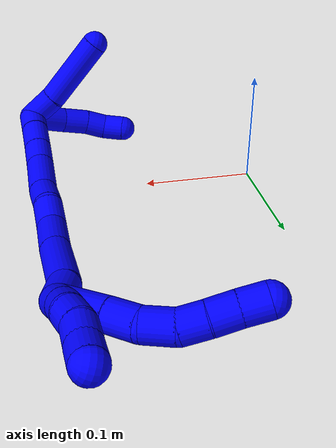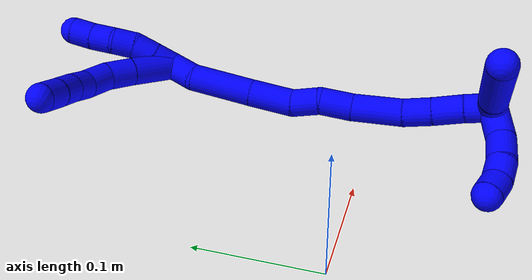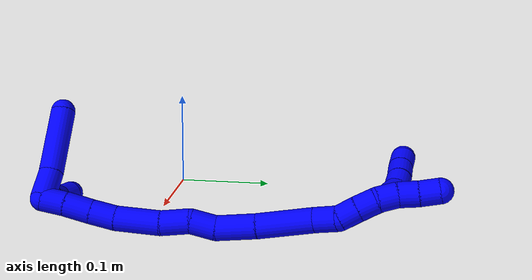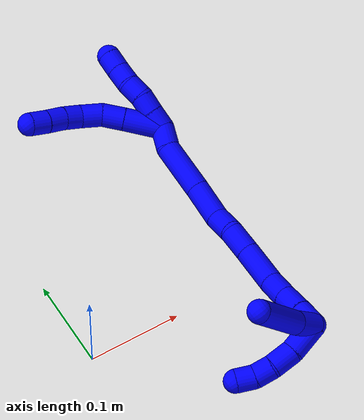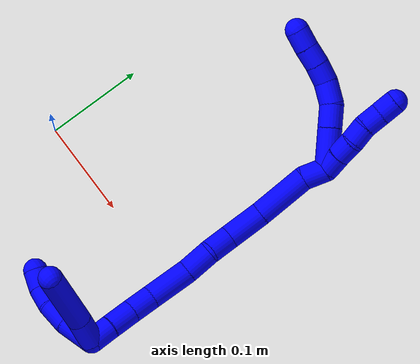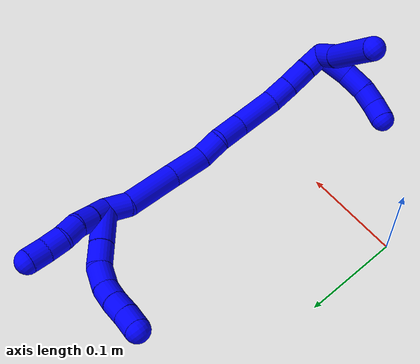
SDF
<sdf version="1.7">
 <world name="default">
  <model name="1">
   <static>0</static>
   <link name="1">
    <collision name="collision-cylinder-e_1_2_8">
     <pose>0.008813 0.013366 0.013332 -0.786685 0.436766 -0.183663</pose>
     <geometry><cylinder><radius>0.0125</radius><length>0.041668</length></cylinder></geometry>
     <surface>
      <friction><ode><mu>1.16</mu><mu2>1.16</mu2><slip1>0</slip1><slip2>0</slip2></ode></friction>
      <contact><ode><kp>1e+06</kp><kd>1</kd><max_vel>0</max_vel><min_depth>0.001</min_depth></ode></contact>
     </surface>
    </collision>
    <visual name="visual-cylinder-e_1_2_8">
     <pose>0.008813 0.013366 0.013332 -0.786685 0.436766 -0.183663</pose>
     <geometry><cylinder><radius>0.0125</radius><length>0.041668</length></cylinder></geometry>
     <material><ambient>0 0 1 1</ambient></material>
    </visual>
    <collision name="collision-cylinder-e_2_8_9">
     <pose>0.022307 0.034572 0.034587 -0.780093 0.39757 -0.165255</pose>
     <geometry><cylinder><radius>0.0125</radius><length>0.024177</length></cylinder></geometry>
     <surface>
      <friction><ode><mu>1.16</mu><mu2>1.16</mu2><slip1>0</slip1><slip2>0</slip2></ode></friction>
      <contact><ode><kp>1e+06</kp><kd>1</kd><max_vel>0</max_vel><min_depth>0.001</min_depth></ode></contact>
     </surface>
    </collision>
    <visual name="visual-cylinder-e_2_8_9">
     <pose>0.022307 0.034572 0.034587 -0.780093 0.39757 -0.165255</pose>
     <geometry><cylinder><radius>0.0125</radius><length>0.024177</length></cylinder></geometry>
     <material><ambient>0 0 1 1</ambient></material>
    </visual>
    <collision name="collision-cylinder-e_3_9_10">
     <pose>0.032173 0.046752 0.052379 -0.414389 0.448274 -0.095769</pose>
     <geometry><cylinder><radius>0.0125</radius><length>0.023929</length></cylinder></geometry>
     <surface>
      <friction><ode><mu>1.16</mu><mu2>1.16</mu2><slip1>0</slip1><slip2>0</slip2></ode></friction>
      <contact><ode><kp>1e+06</kp><kd>1</kd><max_vel>0</max_vel><min_depth>0.001</min_depth></ode></contact>
     </surface>
    </collision>
    <visual name="visual-cylinder-e_3_9_10">
     <pose>0.032173 0.046752 0.052379 -0.414389 0.448274 -0.095769</pose>
     <geometry><cylinder><radius>0.0125</radius><length>0.023929</length></cylinder></geometry>
     <material><ambient>0 0 1 1</ambient></material>
    </visual>
    <collision name="collision-cylinder-e_4_10_11">
     <pose>0.043878 0.052386 0.069803 -0.169391 0.704967 -0.062439</pose>
     <geometry><cylinder><radius>0.0125</radius><length>0.020124</length></cylinder></geometry>
     <surface>
      <friction><ode><mu>1.16</mu><mu2>1.16</mu2><slip1>0</slip1><slip2>0</slip2></ode></friction>
      <contact><ode><kp>1e+06</kp><kd>1</kd><max_vel>0</max_vel><min_depth>0.001</min_depth></ode></contact>
     </surface>
    </collision>
    <visual name="visual-cylinder-e_4_10_11">
     <pose>0.043878 0.052386 0.069803 -0.169391 0.704967 -0.062439</pose>
     <geometry><cylinder><radius>0.0125</radius><length>0.020124</length></cylinder></geometry>
     <material><ambient>0 0 1 1</ambient></material>
    </visual>
    <collision name="collision-cylinder-e_5_11_12">
     <pose>0.056731 0.054003 0.085137 -0.041805 0.682743 -0.014855</pose>
     <geometry><cylinder><radius>0.0125</radius><length>0.020074</length></cylinder></geometry>
     <surface>
      <friction><ode><mu>1.16</mu><mu2>1.16</mu2><slip1>0</slip1><slip2>0</slip2></ode></friction>
      <contact><ode><kp>1e+06</kp><kd>1</kd><max_vel>0</max_vel><min_depth>0.001</min_depth></ode></contact>
     </surface>
    </collision>
    <visual name="visual-cylinder-e_5_11_12">
     <pose>0.056731 0.054003 0.085137 -0.041805 0.682743 -0.014855</pose>
     <geometry><cylinder><radius>0.0125</radius><length>0.020074</length></cylinder></geometry>
     <material><ambient>0 0 1 1</ambient></material>
    </visual>
    <collision name="collision-cylinder-e_6_12_6">
     <pose>0.069346 0.05532 0.100652 -0.127552 0.678124 -0.045039</pose>
     <geometry><cylinder><radius>0.0125</radius><length>0.020027</length></cylinder></geometry>
     <surface>
      <friction><ode><mu>1.16</mu><mu2>1.16</mu2><slip1>0</slip1><slip2>0</slip2></ode></friction>
      <contact><ode><kp>1e+06</kp><kd>1</kd><max_vel>0</max_vel><min_depth>0.001</min_depth></ode></contact>
     </surface>
    </collision>
    <visual name="visual-cylinder-e_6_12_6">
     <pose>0.069346 0.05532 0.100652 -0.127552 0.678124 -0.045039</pose>
     <geometry><cylinder><radius>0.0125</radius><length>0.020027</length></cylinder></geometry>
     <material><ambient>0 0 1 1</ambient></material>
    </visual>
    <collision name="collision-cylinder-e_1_2_13">
     <pose>0.005276 0.008483 -0.000459 -1.62487 0.555733 -0.584935</pose>
     <geometry><cylinder><radius>0.0125</radius><length>0.02</length></cylinder></geometry>
     <surface>
      <friction><ode><mu>1.16</mu><mu2>1.16</mu2><slip1>0</slip1><slip2>0</slip2></ode></friction>
      <contact><ode><kp>1e+06</kp><kd>1</kd><max_vel>0</max_vel><min_depth>0.001</min_depth></ode></contact>
     </surface>
    </collision>
    <visual name="visual-cylinder-e_1_2_13">
     <pose>0.005276 0.008483 -0.000459 -1.62487 0.555733 -0.584935</pose>
     <geometry><cylinder><radius>0.0125</radius><length>0.02</length></cylinder></geometry>
     <material><ambient>0 0 1 1</ambient></material>
    </visual>
    <collision name="collision-cylinder-e_2_13_14">
     <pose>0.015286 0.025736 -0.001738 -1.664 0.493184 -0.539226</pose>
     <geometry><cylinder><radius>0.0125</radius><length>0.02</length></cylinder></geometry>
     <surface>
      <friction><ode><mu>1.16</mu><mu2>1.16</mu2><slip1>0</slip1><slip2>0</slip2></ode></friction>
      <contact><ode><kp>1e+06</kp><kd>1</kd><max_vel>0</max_vel><min_depth>0.001</min_depth></ode></contact>
     </surface>
    </collision>
    <visual name="visual-cylinder-e_2_13_14">
     <pose>0.015286 0.025736 -0.001738 -1.664 0.493184 -0.539226</pose>
     <geometry><cylinder><radius>0.0125</radius><length>0.02</length></cylinder></geometry>
     <material><ambient>0 0 1 1</ambient></material>
    </visual>
    <collision name="collision-cylinder-e_3_14_15">
     <pose>0.023236 0.043886 -0.001265 -1.43383 0.327444 -0.286019</pose>
     <geometry><cylinder><radius>0.0125</radius><length>0.02</length></cylinder></geometry>
     <surface>
      <friction><ode><mu>1.16</mu><mu2>1.16</mu2><slip1>0</slip1><slip2>0</slip2></ode></friction>
      <contact><ode><kp>1e+06</kp><kd>1</kd><max_vel>0</max_vel><min_depth>0.001</min_depth></ode></contact>
     </surface>
    </collision>
    <visual name="visual-cylinder-e_3_14_15">
     <pose>0.023236 0.043886 -0.001265 -1.43383 0.327444 -0.286019</pose>
     <geometry><cylinder><radius>0.0125</radius><length>0.02</length></cylinder></geometry>
     <material><ambient>0 0 1 1</ambient></material>
    </visual>
    <collision name="collision-cylinder-e_4_15_16">
     <pose>0.027626 0.063196 -3.5e-05 -1.57717 0.117575 -0.118326</pose>
     <geometry><cylinder><radius>0.0125</radius><length>0.02</length></cylinder></geometry>
     <surface>
      <friction><ode><mu>1.16</mu><mu2>1.16</mu2><slip1>0</slip1><slip2>0</slip2></ode></friction>
      <contact><ode><kp>1e+06</kp><kd>1</kd><max_vel>0</max_vel><min_depth>0.001</min_depth></ode></contact>
     </surface>
    </collision>
    <visual name="visual-cylinder-e_4_15_16">
     <pose>0.027626 0.063196 -3.5e-05 -1.57717 0.117575 -0.118326</pose>
     <geometry><cylinder><radius>0.0125</radius><length>0.02</length></cylinder></geometry>
     <material><ambient>0 0 1 1</ambient></material>
    </visual>
    <collision name="collision-cylinder-e_5_16_5">
     <pose>0.030844 0.082906 -0.000533 -1.61518 0.206019 -0.215302</pose>
     <geometry><cylinder><radius>0.0125</radius><length>0.02</length></cylinder></geometry>
     <surface>
      <friction><ode><mu>1.16</mu><mu2>1.16</mu2><slip1>0</slip1><slip2>0</slip2></ode></friction>
      <contact><ode><kp>1e+06</kp><kd>1</kd><max_vel>0</max_vel><min_depth>0.001</min_depth></ode></contact>
     </surface>
    </collision>
    <visual name="visual-cylinder-e_5_16_5">
     <pose>0.030844 0.082906 -0.000533 -1.61518 0.206019 -0.215302</pose>
     <geometry><cylinder><radius>0.0125</radius><length>0.02</length></cylinder></geometry>
     <material><ambient>0 0 1 1</ambient></material>
    </visual>
    <collision name="collision-cylinder-e_1_2_17">
     <pose>-0.001307 -0.011698 0.004243 1.22283 -0.104684 -0.073421</pose>
     <geometry><cylinder><radius>0.0125</radius><length>0.025025</length></cylinder></geometry>
     <surface>
      <friction><ode><mu>1.16</mu><mu2>1.16</mu2><slip1>0</slip1><slip2>0</slip2></ode></friction>
      <contact><ode><kp>1e+06</kp><kd>1</kd><max_vel>0</max_vel><min_depth>0.001</min_depth></ode></contact>
     </surface>
    </collision>
    <visual name="visual-cylinder-e_1_2_17">
     <pose>-0.001307 -0.011698 0.004243 1.22283 -0.104684 -0.073421</pose>
     <geometry><cylinder><radius>0.0125</radius><length>0.025025</length></cylinder></geometry>
     <material><ambient>0 0 1 1</ambient></material>
    </visual>
    <collision name="collision-cylinder-e_2_17_18">
     <pose>-0.00768 -0.051272 0.009159 1.54667 -0.179705 -0.175442</pose>
     <geometry><cylinder><radius>0.0125</radius><length>0.05668</length></cylinder></geometry>
     <surface>
      <friction><ode><mu>1.16</mu><mu2>1.16</mu2><slip1>0</slip1><slip2>0</slip2></ode></friction>
      <contact><ode><kp>1e+06</kp><kd>1</kd><max_vel>0</max_vel><min_depth>0.001</min_depth></ode></contact>
     </surface>
    </collision>
    <visual name="visual-cylinder-e_2_17_18">
     <pose>-0.00768 -0.051272 0.009159 1.54667 -0.179705 -0.175442</pose>
     <geometry><cylinder><radius>0.0125</radius><length>0.05668</length></cylinder></geometry>
     <material><ambient>0 0 1 1</ambient></material>
    </visual>
    <collision name="collision-cylinder-e_3_18_19">
     <pose>-0.015184 -0.099089 0.010736 1.52549 -0.121535 -0.116162</pose>
     <geometry><cylinder><radius>0.0125</radius><length>0.040221</length></cylinder></geometry>
     <surface>
      <friction><ode><mu>1.16</mu><mu2>1.16</mu2><slip1>0</slip1><slip2>0</slip2></ode></friction>
      <contact><ode><kp>1e+06</kp><kd>1</kd><max_vel>0</max_vel><min_depth>0.001</min_depth></ode></contact>
     </surface>
    </collision>
    <visual name="visual-cylinder-e_3_18_19">
     <pose>-0.015184 -0.099089 0.010736 1.52549 -0.121535 -0.116162</pose>
     <geometry><cylinder><radius>0.0125</radius><length>0.040221</length></cylinder></geometry>
     <material><ambient>0 0 1 1</ambient></material>
    </visual>
    <collision name="collision-cylinder-e_4_19_20">
     <pose>-0.015221 -0.131831 0.010066 1.69315 0.184038 0.207891</pose>
     <geometry><cylinder><radius>0.0125</radius><length>0.026236</length></cylinder></geometry>
     <surface>
      <friction><ode><mu>1.16</mu><mu2>1.16</mu2><slip1>0</slip1><slip2>0</slip2></ode></friction>
      <contact><ode><kp>1e+06</kp><kd>1</kd><max_vel>0</max_vel><min_depth>0.001</min_depth></ode></contact>
     </surface>
    </collision>
    <visual name="visual-cylinder-e_4_19_20">
     <pose>-0.015221 -0.131831 0.010066 1.69315 0.184038 0.207891</pose>
     <geometry><cylinder><radius>0.0125</radius><length>0.026236</length></cylinder></geometry>
     <material><ambient>0 0 1 1</ambient></material>
    </visual>
    <collision name="collision-cylinder-e_5_20_21">
     <pose>-0.014981 -0.159246 0.008151 1.59415 -0.146715 -0.150168</pose>
     <geometry><cylinder><radius>0.0125</radius><length>0.029556</length></cylinder></geometry>
     <surface>
      <friction><ode><mu>1.16</mu><mu2>1.16</mu2><slip1>0</slip1><slip2>0</slip2></ode></friction>
      <contact><ode><kp>1e+06</kp><kd>1</kd><max_vel>0</max_vel><min_depth>0.001</min_depth></ode></contact>
     </surface>
    </collision>
    <visual name="visual-cylinder-e_5_20_21">
     <pose>-0.014981 -0.159246 0.008151 1.59415 -0.146715 -0.150168</pose>
     <geometry><cylinder><radius>0.0125</radius><length>0.029556</length></cylinder></geometry>
     <material><ambient>0 0 1 1</ambient></material>
    </visual>
    <collision name="collision-cylinder-e_6_21_22">
     <pose>-0.016437 -0.196697 0.007561 1.5817 0.030838 0.031176</pose>
     <geometry><cylinder><radius>0.0125</radius><length>0.045697</length></cylinder></geometry>
     <surface>
      <friction><ode><mu>1.16</mu><mu2>1.16</mu2><slip1>0</slip1><slip2>0</slip2></ode></friction>
      <contact><ode><kp>1e+06</kp><kd>1</kd><max_vel>0</max_vel><min_depth>0.001</min_depth></ode></contact>
     </surface>
    </collision>
    <visual name="visual-cylinder-e_6_21_22">
     <pose>-0.016437 -0.196697 0.007561 1.5817 0.030838 0.031176</pose>
     <geometry><cylinder><radius>0.0125</radius><length>0.045697</length></cylinder></geometry>
     <material><ambient>0 0 1 1</ambient></material>
    </visual>
    <collision name="collision-cylinder-e_7_22_23">
     <pose>-0.013484 -0.23212 0.00614 1.66365 0.176032 0.193085</pose>
     <geometry><cylinder><radius>0.0125</radius><length>0.025679</length></cylinder></geometry>
     <surface>
      <friction><ode><mu>1.16</mu><mu2>1.16</mu2><slip1>0</slip1><slip2>0</slip2></ode></friction>
      <contact><ode><kp>1e+06</kp><kd>1</kd><max_vel>0</max_vel><min_depth>0.001</min_depth></ode></contact>
     </surface>
    </collision>
    <visual name="visual-cylinder-e_7_22_23">
     <pose>-0.013484 -0.23212 0.00614 1.66365 0.176032 0.193085</pose>
     <geometry><cylinder><radius>0.0125</radius><length>0.025679</length></cylinder></geometry>
     <material><ambient>0 0 1 1</ambient></material>
    </visual>
    <collision name="collision-cylinder-e_8_23_24">
     <pose>-0.008436 -0.257924 0.003307 1.69577 0.207111 0.234521</pose>
     <geometry><cylinder><radius>0.0125</radius><length>0.027225</length></cylinder></geometry>
     <surface>
      <friction><ode><mu>1.16</mu><mu2>1.16</mu2><slip1>0</slip1><slip2>0</slip2></ode></friction>
      <contact><ode><kp>1e+06</kp><kd>1</kd><max_vel>0</max_vel><min_depth>0.001</min_depth></ode></contact>
     </surface>
    </collision>
    <visual name="visual-cylinder-e_8_23_24">
     <pose>-0.008436 -0.257924 0.003307 1.69577 0.207111 0.234521</pose>
     <geometry><cylinder><radius>0.0125</radius><length>0.027225</length></cylinder></geometry>
     <material><ambient>0 0 1 1</ambient></material>
    </visual>
    <collision name="collision-cylinder-e_9_24_1">
     <pose>-0.004004 -0.282807 0.000433 1.67449 0.138384 0.153476</pose>
     <geometry><cylinder><radius>0.0125</radius><length>0.023682</length></cylinder></geometry>
     <surface>
      <friction><ode><mu>1.16</mu><mu2>1.16</mu2><slip1>0</slip1><slip2>0</slip2></ode></friction>
      <contact><ode><kp>1e+06</kp><kd>1</kd><max_vel>0</max_vel><min_depth>0.001</min_depth></ode></contact>
     </surface>
    </collision>
    <visual name="visual-cylinder-e_9_24_1">
     <pose>-0.004004 -0.282807 0.000433 1.67449 0.138384 0.153476</pose>
     <geometry><cylinder><radius>0.0125</radius><length>0.023682</length></cylinder></geometry>
     <material><ambient>0 0 1 1</ambient></material>
    </visual>
    <collision name="collision-cylinder-e_1_1_25">
     <pose>-0.001503 -0.299194 0.015738 0.278475 0.050427 0.007069</pose>
     <geometry><cylinder><radius>0.0125</radius><length>0.034406</length></cylinder></geometry>
     <surface>
      <friction><ode><mu>1.16</mu><mu2>1.16</mu2><slip1>0</slip1><slip2>0</slip2></ode></friction>
      <contact><ode><kp>1e+06</kp><kd>1</kd><max_vel>0</max_vel><min_depth>0.001</min_depth></ode></contact>
     </surface>
    </collision>
    <visual name="visual-cylinder-e_1_1_25">
     <pose>-0.001503 -0.299194 0.015738 0.278475 0.050427 0.007069</pose>
     <geometry><cylinder><radius>0.0125</radius><length>0.034406</length></cylinder></geometry>
     <material><ambient>0 0 1 1</ambient></material>
    </visual>
    <collision name="collision-cylinder-e_2_25_26">
     <pose>0.001529 -0.30499 0.04476 0.085606 0.170859 0.007336</pose>
     <geometry><cylinder><radius>0.0125</radius><length>0.025469</length></cylinder></geometry>
     <surface>
      <friction><ode><mu>1.16</mu><mu2>1.16</mu2><slip1>0</slip1><slip2>0</slip2></ode></friction>
      <contact><ode><kp>1e+06</kp><kd>1</kd><max_vel>0</max_vel><min_depth>0.001</min_depth></ode></contact>
     </surface>
    </collision>
    <visual name="visual-cylinder-e_2_25_26">
     <pose>0.001529 -0.30499 0.04476 0.085606 0.170859 0.007336</pose>
     <geometry><cylinder><radius>0.0125</radius><length>0.025469</length></cylinder></geometry>
     <material><ambient>0 0 1 1</ambient></material>
    </visual>
    <collision name="collision-cylinder-e_3_26_27">
     <pose>0.004559 -0.304977 0.067204 -0.108819 0.086226 -0.004699</pose>
     <geometry><cylinder><radius>0.0125</radius><length>0.020074</length></cylinder></geometry>
     <surface>
      <friction><ode><mu>1.16</mu><mu2>1.16</mu2><slip1>0</slip1><slip2>0</slip2></ode></friction>
      <contact><ode><kp>1e+06</kp><kd>1</kd><max_vel>0</max_vel><min_depth>0.001</min_depth></ode></contact>
     </surface>
    </collision>
    <visual name="visual-cylinder-e_3_26_27">
     <pose>0.004559 -0.304977 0.067204 -0.108819 0.086226 -0.004699</pose>
     <geometry><cylinder><radius>0.0125</radius><length>0.020074</length></cylinder></geometry>
     <material><ambient>0 0 1 1</ambient></material>
    </visual>
    <collision name="collision-cylinder-e_4_27_4">
     <pose>0.008656 -0.300822 0.086125 -0.329304 0.328302 -0.055031</pose>
     <geometry><cylinder><radius>0.0125</radius><length>0.020051</length></cylinder></geometry>
     <surface>
      <friction><ode><mu>1.16</mu><mu2>1.16</mu2><slip1>0</slip1><slip2>0</slip2></ode></friction>
      <contact><ode><kp>1e+06</kp><kd>1</kd><max_vel>0</max_vel><min_depth>0.001</min_depth></ode></contact>
     </surface>
    </collision>
    <visual name="visual-cylinder-e_4_27_4">
     <pose>0.008656 -0.300822 0.086125 -0.329304 0.328302 -0.055031</pose>
     <geometry><cylinder><radius>0.0125</radius><length>0.020051</length></cylinder></geometry>
     <material><ambient>0 0 1 1</ambient></material>
    </visual>
    <collision name="collision-cylinder-e_1_1_28">
     <pose>0.011331 -0.293869 0.00577 -0.09173 1.12313 -0.057734</pose>
     <geometry><cylinder><radius>0.0125</radius><length>0.030398</length></cylinder></geometry>
     <surface>
      <friction><ode><mu>1.16</mu><mu2>1.16</mu2><slip1>0</slip1><slip2>0</slip2></ode></friction>
      <contact><ode><kp>1e+06</kp><kd>1</kd><max_vel>0</max_vel><min_depth>0.001</min_depth></ode></contact>
     </surface>
    </collision>
    <visual name="visual-cylinder-e_1_1_28">
     <pose>0.011331 -0.293869 0.00577 -0.09173 1.12313 -0.057734</pose>
     <geometry><cylinder><radius>0.0125</radius><length>0.030398</length></cylinder></geometry>
     <material><ambient>0 0 1 1</ambient></material>
    </visual>
    <collision name="collision-cylinder-e_2_28_3">
     <pose>0.058369 -0.293807 0.022294 0.054168 1.27972 0.040323</pose>
     <geometry><cylinder><radius>0.0125</radius><length>0.069602</length></cylinder></geometry>
     <surface>
      <friction><ode><mu>1.16</mu><mu2>1.16</mu2><slip1>0</slip1><slip2>0</slip2></ode></friction>
      <contact><ode><kp>1e+06</kp><kd>1</kd><max_vel>0</max_vel><min_depth>0.001</min_depth></ode></contact>
     </surface>
    </collision>
    <visual name="visual-cylinder-e_2_28_3">
     <pose>0.058369 -0.293807 0.022294 0.054168 1.27972 0.040323</pose>
     <geometry><cylinder><radius>0.0125</radius><length>0.069602</length></cylinder></geometry>
     <material><ambient>0 0 1 1</ambient></material>
    </visual>
    <collision name="collision-sphere-3">
     <pose>0.091706 -0.294347 0.032267 0 -0 0</pose>
     <geometry><sphere><radius>0.0125</radius></sphere></geometry>
     <surface>
      <friction><ode><mu>1.16</mu><mu2>1.16</mu2><slip1>0</slip1><slip2>0</slip2></ode></friction>
      <contact><ode><kp>1e+06</kp><kd>1</kd><max_vel>0</max_vel><min_depth>0.001</min_depth></ode></contact>
     </surface>
    </collision>
    <visual name="visual-sphere-3">
     <pose>0.091706 -0.294347 0.032267 0 -0 0</pose>
     <geometry><sphere><radius>0.0125</radius></sphere></geometry>
     <material><ambient>0 0 1 1</ambient></material>
    </visual>
    <collision name="collision-sphere-28">
     <pose>0.025032 -0.293266 0.012322 0 -0 0</pose>
     <geometry><sphere><radius>0.0125</radius></sphere></geometry>
     <surface>
      <friction><ode><mu>1.16</mu><mu2>1.16</mu2><slip1>0</slip1><slip2>0</slip2></ode></friction>
      <contact><ode><kp>1e+06</kp><kd>1</kd><max_vel>0</max_vel><min_depth>0.001</min_depth></ode></contact>
     </surface>
    </collision>
    <visual name="visual-sphere-28">
     <pose>0.025032 -0.293266 0.012322 0 -0 0</pose>
     <geometry><sphere><radius>0.0125</radius></sphere></geometry>
     <material><ambient>0 0 1 1</ambient></material>
    </visual>
    <collision name="collision-sphere-4">
     <pose>0.011888 -0.297753 0.095105 0 -0 0</pose>
     <geometry><sphere><radius>0.0125</radius></sphere></geometry>
     <surface>
      <friction><ode><mu>1.16</mu><mu2>1.16</mu2><slip1>0</slip1><slip2>0</slip2></ode></friction>
      <contact><ode><kp>1e+06</kp><kd>1</kd><max_vel>0</max_vel><min_depth>0.001</min_depth></ode></contact>
     </surface>
    </collision>
    <visual name="visual-sphere-4">
     <pose>0.011888 -0.297753 0.095105 0 -0 0</pose>
     <geometry><sphere><radius>0.0125</radius></sphere></geometry>
     <material><ambient>0 0 1 1</ambient></material>
    </visual>
    <collision name="collision-sphere-27">
     <pose>0.005423 -0.303891 0.077145 0 -0 0</pose>
     <geometry><sphere><radius>0.0125</radius></sphere></geometry>
     <surface>
      <friction><ode><mu>1.16</mu><mu2>1.16</mu2><slip1>0</slip1><slip2>0</slip2></ode></friction>
      <contact><ode><kp>1e+06</kp><kd>1</kd><max_vel>0</max_vel><min_depth>0.001</min_depth></ode></contact>
     </surface>
    </collision>
    <visual name="visual-sphere-27">
     <pose>0.005423 -0.303891 0.077145 0 -0 0</pose>
     <geometry><sphere><radius>0.0125</radius></sphere></geometry>
     <material><ambient>0 0 1 1</ambient></material>
    </visual>
    <collision name="collision-sphere-26">
     <pose>0.003694 -0.306063 0.057264 0 -0 0</pose>
     <geometry><sphere><radius>0.0125</radius></sphere></geometry>
     <surface>
      <friction><ode><mu>1.16</mu><mu2>1.16</mu2><slip1>0</slip1><slip2>0</slip2></ode></friction>
      <contact><ode><kp>1e+06</kp><kd>1</kd><max_vel>0</max_vel><min_depth>0.001</min_depth></ode></contact>
     </surface>
    </collision>
    <visual name="visual-sphere-26">
     <pose>0.003694 -0.306063 0.057264 0 -0 0</pose>
     <geometry><sphere><radius>0.0125</radius></sphere></geometry>
     <material><ambient>0 0 1 1</ambient></material>
    </visual>
    <collision name="collision-sphere-25">
     <pose>-0.000636 -0.303917 0.032257 0 -0 0</pose>
     <geometry><sphere><radius>0.0125</radius></sphere></geometry>
     <surface>
      <friction><ode><mu>1.16</mu><mu2>1.16</mu2><slip1>0</slip1><slip2>0</slip2></ode></friction>
      <contact><ode><kp>1e+06</kp><kd>1</kd><max_vel>0</max_vel><min_depth>0.001</min_depth></ode></contact>
     </surface>
    </collision>
    <visual name="visual-sphere-25">
     <pose>-0.000636 -0.303917 0.032257 0 -0 0</pose>
     <geometry><sphere><radius>0.0125</radius></sphere></geometry>
     <material><ambient>0 0 1 1</ambient></material>
    </visual>
    <collision name="collision-sphere-1">
     <pose>-0.00237 -0.294471 -0.000781 0 -0 0</pose>
     <geometry><sphere><radius>0.0125</radius></sphere></geometry>
     <surface>
      <friction><ode><mu>1.16</mu><mu2>1.16</mu2><slip1>0</slip1><slip2>0</slip2></ode></friction>
      <contact><ode><kp>1e+06</kp><kd>1</kd><max_vel>0</max_vel><min_depth>0.001</min_depth></ode></contact>
     </surface>
    </collision>
    <visual name="visual-sphere-1">
     <pose>-0.00237 -0.294471 -0.000781 0 -0 0</pose>
     <geometry><sphere><radius>0.0125</radius></sphere></geometry>
     <material><ambient>0 0 1 1</ambient></material>
    </visual>
    <collision name="collision-sphere-24">
     <pose>-0.005637 -0.271142 0.001646 0 -0 0</pose>
     <geometry><sphere><radius>0.0125</radius></sphere></geometry>
     <surface>
      <friction><ode><mu>1.16</mu><mu2>1.16</mu2><slip1>0</slip1><slip2>0</slip2></ode></friction>
      <contact><ode><kp>1e+06</kp><kd>1</kd><max_vel>0</max_vel><min_depth>0.001</min_depth></ode></contact>
     </surface>
    </collision>
    <visual name="visual-sphere-24">
     <pose>-0.005637 -0.271142 0.001646 0 -0 0</pose>
     <geometry><sphere><radius>0.0125</radius></sphere></geometry>
     <material><ambient>0 0 1 1</ambient></material>
    </visual>
    <collision name="collision-sphere-23">
     <pose>-0.011236 -0.244707 0.004968 0 -0 0</pose>
     <geometry><sphere><radius>0.0125</radius></sphere></geometry>
     <surface>
      <friction><ode><mu>1.16</mu><mu2>1.16</mu2><slip1>0</slip1><slip2>0</slip2></ode></friction>
      <contact><ode><kp>1e+06</kp><kd>1</kd><max_vel>0</max_vel><min_depth>0.001</min_depth></ode></contact>
     </surface>
    </collision>
    <visual name="visual-sphere-23">
     <pose>-0.011236 -0.244707 0.004968 0 -0 0</pose>
     <geometry><sphere><radius>0.0125</radius></sphere></geometry>
     <material><ambient>0 0 1 1</ambient></material>
    </visual>
    <collision name="collision-sphere-22">
     <pose>-0.015733 -0.219533 0.007312 0 -0 0</pose>
     <geometry><sphere><radius>0.0125</radius></sphere></geometry>
     <surface>
      <friction><ode><mu>1.16</mu><mu2>1.16</mu2><slip1>0</slip1><slip2>0</slip2></ode></friction>
      <contact><ode><kp>1e+06</kp><kd>1</kd><max_vel>0</max_vel><min_depth>0.001</min_depth></ode></contact>
     </surface>
    </collision>
    <visual name="visual-sphere-22">
     <pose>-0.015733 -0.219533 0.007312 0 -0 0</pose>
     <geometry><sphere><radius>0.0125</radius></sphere></geometry>
     <material><ambient>0 0 1 1</ambient></material>
    </visual>
    <collision name="collision-sphere-21">
     <pose>-0.017142 -0.173861 0.00781 0 -0 0</pose>
     <geometry><sphere><radius>0.0125</radius></sphere></geometry>
     <surface>
      <friction><ode><mu>1.16</mu><mu2>1.16</mu2><slip1>0</slip1><slip2>0</slip2></ode></friction>
      <contact><ode><kp>1e+06</kp><kd>1</kd><max_vel>0</max_vel><min_depth>0.001</min_depth></ode></contact>
     </surface>
    </collision>
    <visual name="visual-sphere-21">
     <pose>-0.017142 -0.173861 0.00781 0 -0 0</pose>
     <geometry><sphere><radius>0.0125</radius></sphere></geometry>
     <material><ambient>0 0 1 1</ambient></material>
    </visual>
    <collision name="collision-sphere-12">
     <pose>0.063064 0.054328 0.092918 0 -0 0</pose>
     <geometry><sphere><radius>0.0125</radius></sphere></geometry>
     <surface>
      <friction><ode><mu>1.16</mu><mu2>1.16</mu2><slip1>0</slip1><slip2>0</slip2></ode></friction>
      <contact><ode><kp>1e+06</kp><kd>1</kd><max_vel>0</max_vel><min_depth>0.001</min_depth></ode></contact>
     </surface>
    </collision>
    <visual name="visual-sphere-12">
     <pose>0.063064 0.054328 0.092918 0 -0 0</pose>
     <geometry><sphere><radius>0.0125</radius></sphere></geometry>
     <material><ambient>0 0 1 1</ambient></material>
    </visual>
    <collision name="collision-sphere-11">
     <pose>0.050399 0.053677 0.077357 0 -0 0</pose>
     <geometry><sphere><radius>0.0125</radius></sphere></geometry>
     <surface>
      <friction><ode><mu>1.16</mu><mu2>1.16</mu2><slip1>0</slip1><slip2>0</slip2></ode></friction>
      <contact><ode><kp>1e+06</kp><kd>1</kd><max_vel>0</max_vel><min_depth>0.001</min_depth></ode></contact>
     </surface>
    </collision>
    <visual name="visual-sphere-11">
     <pose>0.050399 0.053677 0.077357 0 -0 0</pose>
     <geometry><sphere><radius>0.0125</radius></sphere></geometry>
     <material><ambient>0 0 1 1</ambient></material>
    </visual>
    <collision name="collision-sphere-10">
     <pose>0.037358 0.051094 0.062249 0 -0 0</pose>
     <geometry><sphere><radius>0.0125</radius></sphere></geometry>
     <surface>
      <friction><ode><mu>1.16</mu><mu2>1.16</mu2><slip1>0</slip1><slip2>0</slip2></ode></friction>
      <contact><ode><kp>1e+06</kp><kd>1</kd><max_vel>0</max_vel><min_depth>0.001</min_depth></ode></contact>
     </surface>
    </collision>
    <visual name="visual-sphere-10">
     <pose>0.037358 0.051094 0.062249 0 -0 0</pose>
     <geometry><sphere><radius>0.0125</radius></sphere></geometry>
     <material><ambient>0 0 1 1</ambient></material>
    </visual>
    <collision name="collision-sphere-9">
     <pose>0.026987 0.042411 0.04251 0 -0 0</pose>
     <geometry><sphere><radius>0.0125</radius></sphere></geometry>
     <surface>
      <friction><ode><mu>1.16</mu><mu2>1.16</mu2><slip1>0</slip1><slip2>0</slip2></ode></friction>
      <contact><ode><kp>1e+06</kp><kd>1</kd><max_vel>0</max_vel><min_depth>0.001</min_depth></ode></contact>
     </surface>
    </collision>
    <visual name="visual-sphere-9">
     <pose>0.026987 0.042411 0.04251 0 -0 0</pose>
     <geometry><sphere><radius>0.0125</radius></sphere></geometry>
     <material><ambient>0 0 1 1</ambient></material>
    </visual>
    <collision name="collision-sphere-2">
     <geometry><sphere><radius>0.0125</radius></sphere></geometry>
     <surface>
      <friction><ode><mu>1.16</mu><mu2>1.16</mu2><slip1>0</slip1><slip2>0</slip2></ode></friction>
      <contact><ode><kp>1e+06</kp><kd>1</kd><max_vel>0</max_vel><min_depth>0.001</min_depth></ode></contact>
     </surface>
    </collision>
    <visual name="visual-sphere-2">
     <geometry><sphere><radius>0.0125</radius></sphere></geometry>
     <material><ambient>0 0 1 1</ambient></material>
    </visual>
    <collision name="collision-sphere-19">
     <pose>-0.017622 -0.119031 0.01164 0 -0 0</pose>
     <geometry><sphere><radius>0.0125</radius></sphere></geometry>
     <surface>
      <friction><ode><mu>1.16</mu><mu2>1.16</mu2><slip1>0</slip1><slip2>0</slip2></ode></friction>
      <contact><ode><kp>1e+06</kp><kd>1</kd><max_vel>0</max_vel><min_depth>0.001</min_depth></ode></contact>
     </surface>
    </collision>
    <visual name="visual-sphere-19">
     <pose>-0.017622 -0.119031 0.01164 0 -0 0</pose>
     <geometry><sphere><radius>0.0125</radius></sphere></geometry>
     <material><ambient>0 0 1 1</ambient></material>
    </visual>
    <collision name="collision-sphere-8">
     <pose>0.017626 0.026732 0.026664 0 -0 0</pose>
     <geometry><sphere><radius>0.0125</radius></sphere></geometry>
     <surface>
      <friction><ode><mu>1.16</mu><mu2>1.16</mu2><slip1>0</slip1><slip2>0</slip2></ode></friction>
      <contact><ode><kp>1e+06</kp><kd>1</kd><max_vel>0</max_vel><min_depth>0.001</min_depth></ode></contact>
     </surface>
    </collision>
    <visual name="visual-sphere-8">
     <pose>0.017626 0.026732 0.026664 0 -0 0</pose>
     <geometry><sphere><radius>0.0125</radius></sphere></geometry>
     <material><ambient>0 0 1 1</ambient></material>
    </visual>
    <collision name="collision-sphere-6">
     <pose>0.075628 0.056312 0.108387 0 -0 0</pose>
     <geometry><sphere><radius>0.0125</radius></sphere></geometry>
     <surface>
      <friction><ode><mu>1.16</mu><mu2>1.16</mu2><slip1>0</slip1><slip2>0</slip2></ode></friction>
      <contact><ode><kp>1e+06</kp><kd>1</kd><max_vel>0</max_vel><min_depth>0.001</min_depth></ode></contact>
     </surface>
    </collision>
    <visual name="visual-sphere-6">
     <pose>0.075628 0.056312 0.108387 0 -0 0</pose>
     <geometry><sphere><radius>0.0125</radius></sphere></geometry>
     <material><ambient>0 0 1 1</ambient></material>
    </visual>
    <collision name="collision-sphere-13">
     <pose>0.010551 0.016965 -0.000918 0 -0 0</pose>
     <geometry><sphere><radius>0.0125</radius></sphere></geometry>
     <surface>
      <friction><ode><mu>1.16</mu><mu2>1.16</mu2><slip1>0</slip1><slip2>0</slip2></ode></friction>
      <contact><ode><kp>1e+06</kp><kd>1</kd><max_vel>0</max_vel><min_depth>0.001</min_depth></ode></contact>
     </surface>
    </collision>
    <visual name="visual-sphere-13">
     <pose>0.010551 0.016965 -0.000918 0 -0 0</pose>
     <geometry><sphere><radius>0.0125</radius></sphere></geometry>
     <material><ambient>0 0 1 1</ambient></material>
    </visual>
    <collision name="collision-sphere-14">
     <pose>0.02002 0.034506 -0.002558 0 -0 0</pose>
     <geometry><sphere><radius>0.0125</radius></sphere></geometry>
     <surface>
      <friction><ode><mu>1.16</mu><mu2>1.16</mu2><slip1>0</slip1><slip2>0</slip2></ode></friction>
      <contact><ode><kp>1e+06</kp><kd>1</kd><max_vel>0</max_vel><min_depth>0.001</min_depth></ode></contact>
     </surface>
    </collision>
    <visual name="visual-sphere-14">
     <pose>0.02002 0.034506 -0.002558 0 -0 0</pose>
     <geometry><sphere><radius>0.0125</radius></sphere></geometry>
     <material><ambient>0 0 1 1</ambient></material>
    </visual>
    <collision name="collision-sphere-15">
     <pose>0.026452 0.053266 2.8e-05 0 -0 0</pose>
     <geometry><sphere><radius>0.0125</radius></sphere></geometry>
     <surface>
      <friction><ode><mu>1.16</mu><mu2>1.16</mu2><slip1>0</slip1><slip2>0</slip2></ode></friction>
      <contact><ode><kp>1e+06</kp><kd>1</kd><max_vel>0</max_vel><min_depth>0.001</min_depth></ode></contact>
     </surface>
    </collision>
    <visual name="visual-sphere-15">
     <pose>0.026452 0.053266 2.8e-05 0 -0 0</pose>
     <geometry><sphere><radius>0.0125</radius></sphere></geometry>
     <material><ambient>0 0 1 1</ambient></material>
    </visual>
    <collision name="collision-sphere-16">
     <pose>0.028799 0.073127 -9.9e-05 0 -0 0</pose>
     <geometry><sphere><radius>0.0125</radius></sphere></geometry>
     <surface>
      <friction><ode><mu>1.16</mu><mu2>1.16</mu2><slip1>0</slip1><slip2>0</slip2></ode></friction>
      <contact><ode><kp>1e+06</kp><kd>1</kd><max_vel>0</max_vel><min_depth>0.001</min_depth></ode></contact>
     </surface>
    </collision>
    <visual name="visual-sphere-16">
     <pose>0.028799 0.073127 -9.9e-05 0 -0 0</pose>
     <geometry><sphere><radius>0.0125</radius></sphere></geometry>
     <material><ambient>0 0 1 1</ambient></material>
    </visual>
    <collision name="collision-sphere-5">
     <pose>0.03289 0.092685 -0.000967 0 -0 0</pose>
     <geometry><sphere><radius>0.0125</radius></sphere></geometry>
     <surface>
      <friction><ode><mu>1.16</mu><mu2>1.16</mu2><slip1>0</slip1><slip2>0</slip2></ode></friction>
      <contact><ode><kp>1e+06</kp><kd>1</kd><max_vel>0</max_vel><min_depth>0.001</min_depth></ode></contact>
     </surface>
    </collision>
    <visual name="visual-sphere-5">
     <pose>0.03289 0.092685 -0.000967 0 -0 0</pose>
     <geometry><sphere><radius>0.0125</radius></sphere></geometry>
     <material><ambient>0 0 1 1</ambient></material>
    </visual>
    <collision name="collision-sphere-17">
     <pose>-0.002615 -0.023396 0.008486 0 -0 0</pose>
     <geometry><sphere><radius>0.0125</radius></sphere></geometry>
     <surface>
      <friction><ode><mu>1.16</mu><mu2>1.16</mu2><slip1>0</slip1><slip2>0</slip2></ode></friction>
      <contact><ode><kp>1e+06</kp><kd>1</kd><max_vel>0</max_vel><min_depth>0.001</min_depth></ode></contact>
     </surface>
    </collision>
    <visual name="visual-sphere-17">
     <pose>-0.002615 -0.023396 0.008486 0 -0 0</pose>
     <geometry><sphere><radius>0.0125</radius></sphere></geometry>
     <material><ambient>0 0 1 1</ambient></material>
    </visual>
    <collision name="collision-sphere-18">
     <pose>-0.012746 -0.079147 0.009832 0 -0 0</pose>
     <geometry><sphere><radius>0.0125</radius></sphere></geometry>
     <surface>
      <friction><ode><mu>1.16</mu><mu2>1.16</mu2><slip1>0</slip1><slip2>0</slip2></ode></friction>
      <contact><ode><kp>1e+06</kp><kd>1</kd><max_vel>0</max_vel><min_depth>0.001</min_depth></ode></contact>
     </surface>
    </collision>
    <visual name="visual-sphere-18">
     <pose>-0.012746 -0.079147 0.009832 0 -0 0</pose>
     <geometry><sphere><radius>0.0125</radius></sphere></geometry>
     <material><ambient>0 0 1 1</ambient></material>
    </visual>
    <collision name="collision-sphere-20">
     <pose>-0.012821 -0.144631 0.008492 0 -0 0</pose>
     <geometry><sphere><radius>0.0125</radius></sphere></geometry>
     <surface>
      <friction><ode><mu>1.16</mu><mu2>1.16</mu2><slip1>0</slip1><slip2>0</slip2></ode></friction>
      <contact><ode><kp>1e+06</kp><kd>1</kd><max_vel>0</max_vel><min_depth>0.001</min_depth></ode></contact>
     </surface>
    </collision>
    <visual name="visual-sphere-20">
     <pose>-0.012821 -0.144631 0.008492 0 -0 0</pose>
     <geometry><sphere><radius>0.0125</radius></sphere></geometry>
     <material><ambient>0 0 1 1</ambient></material>
    </visual>
    <inertial>
     <pose>0.011265 -0.124499 0.021792 0 -0 0</pose>
     <mass>0.75</mass>
     <inertia><ixx>9.9e-05</ixx><ixy>0</ixy><ixz>0</ixz><iyy>4.2e-05</iyy><iyz>0</iyz><izz>1.3e-05</izz></inertia>
    </inertial>
   </link>
   <pose>0.201354 0.195042 0.030706 -3.09462 -1.18122 3.08721</pose>
  </model>
 </world>
</sdf>
